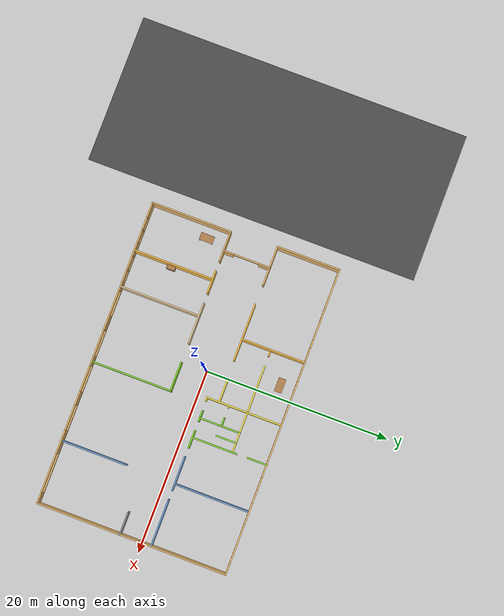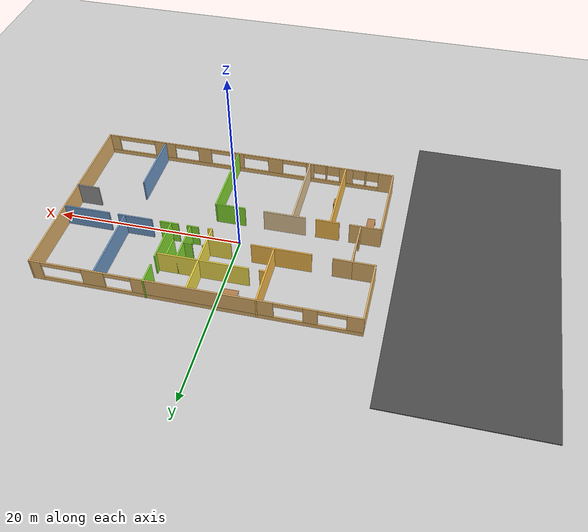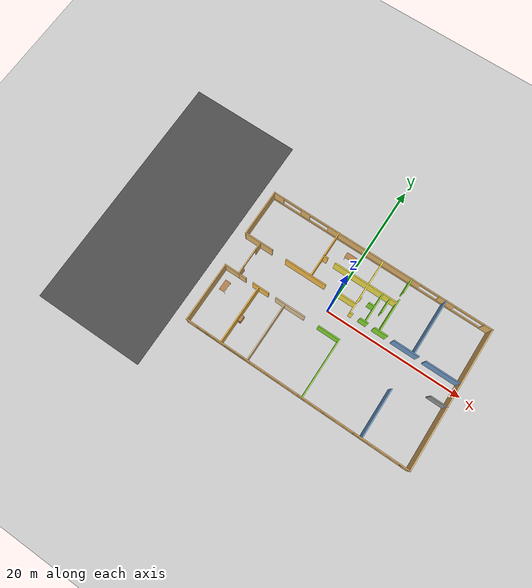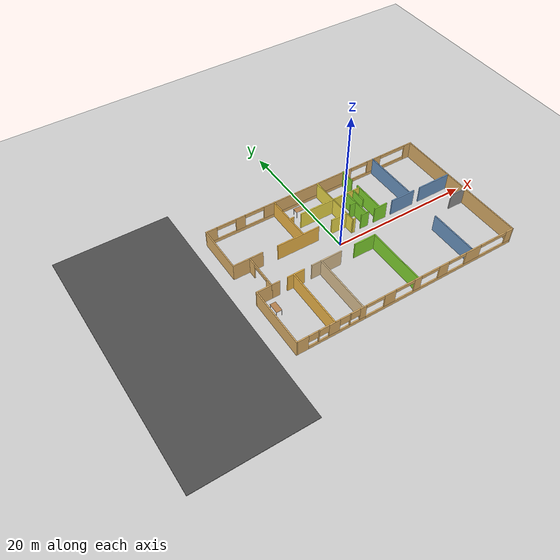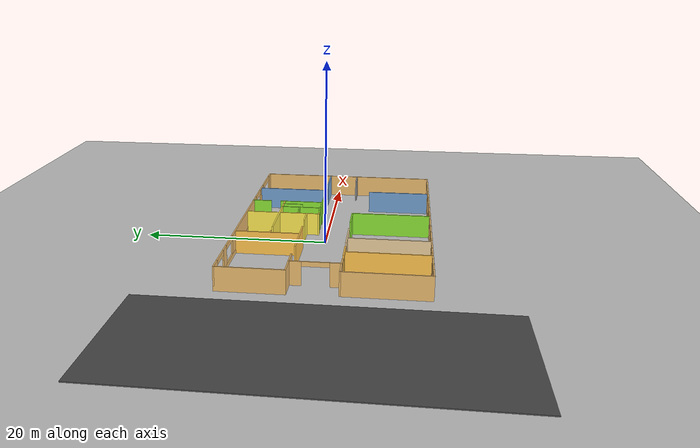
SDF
<sdf version="1.7">
 <world name="default">
  <model name="ground_plane">
   <static>1</static>
   <link name="link">
    <collision name="collision">
     <geometry><plane><normal>0 0 1</normal><size>100 100</size></plane></geometry>
     <surface>
      <contact><collide_bitmask>65535</collide_bitmask></contact>
      <friction><ode><mu>100</mu><mu2>50</mu2></ode></friction>
     </surface>
    </collision>
    <visual name="visual">
     <cast_shadows>0</cast_shadows>
     <geometry><plane><normal>0 0 1</normal><size>100 100</size></plane></geometry>
     <material>
      <script><uri>file://media/materials/scripts/gazebo.material</uri><name>Gazebo/Grey</name></script>
     </material>
    </visual>
   </link>
  </model>
  <model name="myNewWorld">
   <pose>2.09066 -1.06842 0 0 -0 0</pose>
   <link name="Wall_0">
    <collision name="Wall_0_Collision">
     <geometry><box><size>8.75 0.15 2.5</size></box></geometry>
     <pose>0 0 1.25 0 -0 0</pose>
    </collision>
    <visual name="Wall_0_Visual">
     <pose>0 0 1.25 0 -0 0</pose>
     <geometry><box><size>8.75 0.15 2.5</size></box></geometry>
     <material>
      <script><uri>file://media/materials/scripts/gazebo.material</uri><name>Gazebo/Grey</name></script>
      <ambient>0.913725 0.72549 0.431373 1</ambient>
     </material>
     <meta><layer>0</layer></meta>
    </visual>
    <pose>-16.4305 -6.02061 0 0 -0 -1.5708</pose>
   </link>
   <link name="Wall_1">
    <pose>0.119547 -10.3206 0 0 -0 0</pose>
    <visual name="Wall_1_Visual_0">
     <pose>-15.7898 0 1.25 0 -0 0</pose>
     <geometry><box><size>1.67032 0.15 2.5</size></box></geometry>
     <material>
      <script><uri>file://media/materials/scripts/gazebo.material</uri><name>Gazebo/Grey</name></script>
      <ambient>0.913725 0.72549 0.431373 1</ambient>
     </material>
     <meta><layer>0</layer></meta>
    </visual>
    <collision name="Wall_1_Collision_0">
     <geometry><box><size>1.67032 0.15 2.5</size></box></geometry>
     <pose>-15.7898 0 1.25 0 -0 0</pose>
    </collision>
    <visual name="Wall_1_Visual_1">
     <pose>-10.8802 0 0.25 0 -0 0</pose>
     <geometry><box><size>8.149 0.15 0.5</size></box></geometry>
     <material>
      <script><uri>file://media/materials/scripts/gazebo.material</uri><name>Gazebo/Grey</name></script>
      <ambient>0.913725 0.72549 0.431373 1</ambient>
     </material>
     <meta><layer>0</layer></meta>
    </visual>
    <collision name="Wall_1_Collision_1">
     <geometry><box><size>8.149 0.15 0.5</size></box></geometry>
     <pose>-10.8802 0 0.25 0 -0 0</pose>
    </collision>
    <visual name="Wall_1_Visual_2">
     <pose>4.90966 0 0.25 0 -0 0</pose>
     <geometry><box><size>23.4307 0.15 0.5</size></box></geometry>
     <material>
      <script><uri>file://media/materials/scripts/gazebo.material</uri><name>Gazebo/Grey</name></script>
      <ambient>0.913725 0.72549 0.431373 1</ambient>
     </material>
     <meta><layer>0</layer></meta>
    </visual>
    <collision name="Wall_1_Collision_2">
     <geometry><box><size>23.4307 0.15 0.5</size></box></geometry>
     <pose>4.90966 0 0.25 0 -0 0</pose>
    </collision>
    <visual name="Wall_1_Visual_3">
     <pose>-3.24471 0 1.5 0 -0 0</pose>
     <geometry><box><size>1.68247 0.15 2</size></box></geometry>
     <material>
      <script><uri>file://media/materials/scripts/gazebo.material</uri><name>Gazebo/Grey</name></script>
      <ambient>0.913725 0.72549 0.431373 1</ambient>
     </material>
     <meta><layer>0</layer></meta>
    </visual>
    <collision name="Wall_1_Collision_3">
     <geometry><box><size>1.68247 0.15 2</size></box></geometry>
     <pose>-3.24471 0 1.5 0 -0 0</pose>
    </collision>
    <visual name="Wall_1_Visual_4">
     <pose>0.991858 0 1.5 0 -0 0</pose>
     <geometry><box><size>1.08666 0.15 2</size></box></geometry>
     <material>
      <script><uri>file://media/materials/scripts/gazebo.material</uri><name>Gazebo/Grey</name></script>
      <ambient>0.913725 0.72549 0.431373 1</ambient>
     </material>
     <meta><layer>0</layer></meta>
    </visual>
    <collision name="Wall_1_Collision_4">
     <geometry><box><size>1.08666 0.15 2</size></box></geometry>
     <pose>0.991858 0 1.5 0 -0 0</pose>
    </collision>
    <visual name="Wall_1_Visual_5">
     <pose>5.09613 0 1.5 0 -0 0</pose>
     <geometry><box><size>1.54989 0.15 2</size></box></geometry>
     <material>
      <script><uri>file://media/materials/scripts/gazebo.material</uri><name>Gazebo/Grey</name></script>
      <ambient>0.913725 0.72549 0.431373 1</ambient>
     </material>
     <meta><layer>0</layer></meta>
    </visual>
    <collision name="Wall_1_Collision_5">
     <geometry><box><size>1.54989 0.15 2</size></box></geometry>
     <pose>5.09613 0 1.5 0 -0 0</pose>
    </collision>
    <visual name="Wall_1_Visual_6">
     <pose>9.87907 0 1.5 0 -0 0</pose>
     <geometry><box><size>2.50998 0.15 2</size></box></geometry>
     <material>
      <script><uri>file://media/materials/scripts/gazebo.material</uri><name>Gazebo/Grey</name></script>
      <ambient>0.913725 0.72549 0.431373 1</ambient>
     </material>
     <meta><layer>0</layer></meta>
    </visual>
    <collision name="Wall_1_Collision_6">
     <geometry><box><size>2.50998 0.15 2</size></box></geometry>
     <pose>9.87907 0 1.5 0 -0 0</pose>
    </collision>
    <visual name="Wall_1_Visual_7">
     <pose>16.017 0 1.5 0 -0 0</pose>
     <geometry><box><size>1.21594 0.15 2</size></box></geometry>
     <material>
      <script><uri>file://media/materials/scripts/gazebo.material</uri><name>Gazebo/Grey</name></script>
      <ambient>0.913725 0.72549 0.431373 1</ambient>
     </material>
     <meta><layer>0</layer></meta>
    </visual>
    <collision name="Wall_1_Collision_7">
     <geometry><box><size>1.21594 0.15 2</size></box></geometry>
     <pose>16.017 0 1.5 0 -0 0</pose>
    </collision>
    <visual name="Wall_1_Visual_8">
     <pose>-13.5437 0 1.5 0 -0 0</pose>
     <geometry><box><size>0.168237 0.15 2</size></box></geometry>
     <material>
      <script><uri>file://media/materials/scripts/gazebo.material</uri><name>Gazebo/Grey</name></script>
      <ambient>0.913725 0.72549 0.431373 1</ambient>
     </material>
     <meta><layer>0</layer></meta>
    </visual>
    <collision name="Wall_1_Collision_8">
     <geometry><box><size>0.168237 0.15 2</size></box></geometry>
     <pose>-13.5437 0 1.5 0 -0 0</pose>
    </collision>
    <visual name="Wall_1_Visual_9">
     <pose>-11.3487 0 1.5 0 -0 0</pose>
     <geometry><box><size>1.53961 0.15 2</size></box></geometry>
     <material>
      <script><uri>file://media/materials/scripts/gazebo.material</uri><name>Gazebo/Grey</name></script>
      <ambient>0.913725 0.72549 0.431373 1</ambient>
     </material>
     <meta><layer>0</layer></meta>
    </visual>
    <collision name="Wall_1_Collision_9">
     <geometry><box><size>1.53961 0.15 2</size></box></geometry>
     <pose>-11.3487 0 1.5 0 -0 0</pose>
    </collision>
    <visual name="Wall_1_Visual_10">
     <pose>-9.10323 0 1.5 0 -0 0</pose>
     <geometry><box><size>0.159865 0.15 2</size></box></geometry>
     <material>
      <script><uri>file://media/materials/scripts/gazebo.material</uri><name>Gazebo/Grey</name></script>
      <ambient>0.913725 0.72549 0.431373 1</ambient>
     </material>
     <meta><layer>0</layer></meta>
    </visual>
    <collision name="Wall_1_Collision_10">
     <geometry><box><size>0.159865 0.15 2</size></box></geometry>
     <pose>-9.10323 0 1.5 0 -0 0</pose>
    </collision>
    <visual name="Wall_1_Visual_11">
     <pose>-7.2497 0 1.5 0 -0 0</pose>
     <geometry><box><size>0.888039 0.15 2</size></box></geometry>
     <material>
      <script><uri>file://media/materials/scripts/gazebo.material</uri><name>Gazebo/Grey</name></script>
      <ambient>0.913725 0.72549 0.431373 1</ambient>
     </material>
     <meta><layer>0</layer></meta>
    </visual>
    <collision name="Wall_1_Collision_11">
     <geometry><box><size>0.888039 0.15 2</size></box></geometry>
     <pose>-7.2497 0 1.5 0 -0 0</pose>
    </collision>
    <visual name="Wall_1_Visual_12">
     <pose>-7.2497 0 1.5 0 -0 0</pose>
     <geometry><box><size>0.888039 0.15 2</size></box></geometry>
     <material>
      <script><uri>file://media/materials/scripts/gazebo.material</uri><name>Gazebo/Grey</name></script>
      <ambient>0.913725 0.72549 0.431373 1</ambient>
     </material>
     <meta><layer>0</layer></meta>
    </visual>
    <collision name="Wall_1_Collision_12">
     <geometry><box><size>0.888039 0.15 2</size></box></geometry>
     <pose>-7.2497 0 1.5 0 -0 0</pose>
    </collision>
    <visual name="Wall_1_Visual_13">
     <pose>-14.2912 0 1.9 0 -0 0</pose>
     <geometry><box><size>1.32689 0.15 1.2</size></box></geometry>
     <material>
      <script><uri>file://media/materials/scripts/gazebo.material</uri><name>Gazebo/Grey</name></script>
      <ambient>0.913725 0.72549 0.431373 1</ambient>
     </material>
     <meta><layer>0</layer></meta>
    </visual>
    <collision name="Wall_1_Collision_13">
     <geometry><box><size>1.32689 0.15 1.2</size></box></geometry>
     <pose>-14.2912 0 1.9 0 -0 0</pose>
    </collision>
    <visual name="Wall_1_Visual_14">
     <pose>-12.789 0 1.9 0 -0 0</pose>
     <geometry><box><size>1.341 0.15 1.2</size></box></geometry>
     <material>
      <script><uri>file://media/materials/scripts/gazebo.material</uri><name>Gazebo/Grey</name></script>
      <ambient>0.913725 0.72549 0.431373 1</ambient>
     </material>
     <meta><layer>0</layer></meta>
    </visual>
    <collision name="Wall_1_Collision_14">
     <geometry><box><size>1.341 0.15 1.2</size></box></geometry>
     <pose>-12.789 0 1.9 0 -0 0</pose>
    </collision>
    <visual name="Wall_1_Visual_15">
     <pose>-9.88105 0 1.9 0 -0 0</pose>
     <geometry><box><size>1.39578 0.15 1.2</size></box></geometry>
     <material>
      <script><uri>file://media/materials/scripts/gazebo.material</uri><name>Gazebo/Grey</name></script>
      <ambient>0.913725 0.72549 0.431373 1</ambient>
     </material>
     <meta><layer>0</layer></meta>
    </visual>
    <collision name="Wall_1_Collision_15">
     <geometry><box><size>1.39578 0.15 1.2</size></box></geometry>
     <pose>-9.88105 0 1.9 0 -0 0</pose>
    </collision>
    <visual name="Wall_1_Visual_16">
     <pose>-8.3585 0 1.9 0 -0 0</pose>
     <geometry><box><size>1.32958 0.15 1.2</size></box></geometry>
     <material>
      <script><uri>file://media/materials/scripts/gazebo.material</uri><name>Gazebo/Grey</name></script>
      <ambient>0.913725 0.72549 0.431373 1</ambient>
     </material>
     <meta><layer>0</layer></meta>
    </visual>
    <collision name="Wall_1_Collision_16">
     <geometry><box><size>1.32958 0.15 1.2</size></box></geometry>
     <pose>-8.3585 0 1.9 0 -0 0</pose>
    </collision>
    <visual name="Wall_1_Visual_17">
     <pose>-0.977472 0 2.25 0 -0 0</pose>
     <geometry><box><size>2.852 0.15 0.5</size></box></geometry>
     <material>
      <script><uri>file://media/materials/scripts/gazebo.material</uri><name>Gazebo/Grey</name></script>
      <ambient>0.913725 0.72549 0.431373 1</ambient>
     </material>
     <meta><layer>0</layer></meta>
    </visual>
    <collision name="Wall_1_Collision_17">
     <geometry><box><size>2.852 0.15 0.5</size></box></geometry>
     <pose>-0.977472 0 2.25 0 -0 0</pose>
    </collision>
    <visual name="Wall_1_Visual_18">
     <pose>2.92819 0 2.25 0 -0 0</pose>
     <geometry><box><size>2.786 0.15 0.5</size></box></geometry>
     <material>
      <script><uri>file://media/materials/scripts/gazebo.material</uri><name>Gazebo/Grey</name></script>
      <ambient>0.913725 0.72549 0.431373 1</ambient>
     </material>
     <meta><layer>0</layer></meta>
    </visual>
    <collision name="Wall_1_Collision_18">
     <geometry><box><size>2.786 0.15 0.5</size></box></geometry>
     <pose>2.92819 0 2.25 0 -0 0</pose>
    </collision>
    <visual name="Wall_1_Visual_19">
     <pose>7.24758 0 2.25 0 -0 0</pose>
     <geometry><box><size>2.753 0.15 0.5</size></box></geometry>
     <material>
      <script><uri>file://media/materials/scripts/gazebo.material</uri><name>Gazebo/Grey</name></script>
      <ambient>0.913725 0.72549 0.431373 1</ambient>
     </material>
     <meta><layer>0</layer></meta>
    </visual>
    <collision name="Wall_1_Collision_19">
     <geometry><box><size>2.753 0.15 0.5</size></box></geometry>
     <pose>7.24758 0 2.25 0 -0 0</pose>
    </collision>
    <visual name="Wall_1_Visual_20">
     <pose>13.2716 0 2.25 0 -0 0</pose>
     <geometry><box><size>4.275 0.15 0.5</size></box></geometry>
     <material>
      <script><uri>file://media/materials/scripts/gazebo.material</uri><name>Gazebo/Grey</name></script>
      <ambient>0.913725 0.72549 0.431373 1</ambient>
     </material>
     <meta><layer>0</layer></meta>
    </visual>
    <collision name="Wall_1_Collision_20">
     <geometry><box><size>4.275 0.15 0.5</size></box></geometry>
     <pose>13.2716 0 2.25 0 -0 0</pose>
    </collision>
    <visual name="Wall_1_Visual_21">
     <pose>-5.44581 0 2.25 0 -0 0</pose>
     <geometry><box><size>2.71973 0.15 0.5</size></box></geometry>
     <material>
      <script><uri>file://media/materials/scripts/gazebo.material</uri><name>Gazebo/Grey</name></script>
      <ambient>0.913725 0.72549 0.431373 1</ambient>
     </material>
     <meta><layer>0</layer></meta>
    </visual>
    <collision name="Wall_1_Collision_21">
     <geometry><box><size>2.71973 0.15 0.5</size></box></geometry>
     <pose>-5.44581 0 2.25 0 -0 0</pose>
    </collision>
    <visual name="Wall_1_Visual_22">
     <pose>-5.44581 0 2.25 0 -0 0</pose>
     <geometry><box><size>2.71973 0.15 0.5</size></box></geometry>
     <material>
      <script><uri>file://media/materials/scripts/gazebo.material</uri><name>Gazebo/Grey</name></script>
      <ambient>0.913725 0.72549 0.431373 1</ambient>
     </material>
     <meta><layer>0</layer></meta>
    </visual>
    <collision name="Wall_1_Collision_22">
     <geometry><box><size>2.71973 0.15 0.5</size></box></geometry>
     <pose>-5.44581 0 2.25 0 -0 0</pose>
    </collision>
   </link>
   <link name="Wall_11">
    <collision name="Wall_11_Collision">
     <geometry><box><size>2.5 0.15 2.5</size></box></geometry>
     <pose>0 0 1.25 0 -0 0</pose>
    </collision>
    <visual name="Wall_11_Visual">
     <pose>0 0 1.25 0 -0 0</pose>
     <geometry><box><size>2.5 0.15 2.5</size></box></geometry>
     <material>
      <script><uri>file://media/materials/scripts/gazebo.material</uri><name>Gazebo/Grey</name></script>
      <ambient>1 0.764706 0.305882 1</ambient>
     </material>
     <meta><layer>0</layer></meta>
    </visual>
    <pose>-10.8599 -1.67429 0 0 -0 0</pose>
   </link>
   <link name="Wall_13">
    <collision name="Wall_13_Collision">
     <geometry><box><size>4.5 0.15 2.5</size></box></geometry>
     <pose>0 0 1.25 0 -0 0</pose>
    </collision>
    <visual name="Wall_13_Visual">
     <pose>0 0 1.25 0 -0 0</pose>
     <geometry><box><size>4.5 0.15 2.5</size></box></geometry>
     <material>
      <script><uri>file://media/materials/scripts/gazebo.material</uri><name>Gazebo/Grey</name></script>
      <ambient>0.921569 0.807843 0.615686 1</ambient>
     </material>
     <meta><layer>0</layer></meta>
    </visual>
    <pose>-6.29523 -1.65724 0 0 -0 0</pose>
   </link>
   <link name="Wall_15">
    <collision name="Wall_15_Collision">
     <geometry><box><size>3.25 0.15 2.5</size></box></geometry>
     <pose>0 0 1.25 0 -0 0</pose>
    </collision>
    <visual name="Wall_15_Visual">
     <pose>0 0 1.25 0 -0 0</pose>
     <geometry><box><size>3.25 0.15 2.5</size></box></geometry>
     <material>
      <script><uri>file://media/materials/scripts/gazebo.material</uri><name>Gazebo/Grey</name></script>
      <ambient>0.541176 0.886275 0.203922 1</ambient>
     </material>
     <meta><layer>0</layer></meta>
    </visual>
    <pose>-0.387876 -1.65724 0 0 -0 0</pose>
   </link>
   <link name="Wall_16">
    <collision name="Wall_16_Collision">
     <geometry><box><size>8.75 0.15 2.5</size></box></geometry>
     <pose>0 0 1.25 0 -0 0</pose>
    </collision>
    <visual name="Wall_16_Visual">
     <pose>0 0 1.25 0 -0 0</pose>
     <geometry><box><size>8.75 0.15 2.5</size></box></geometry>
     <material>
      <script><uri>file://media/materials/scripts/gazebo.material</uri><name>Gazebo/Grey</name></script>
      <ambient>0.541176 0.886275 0.203922 1</ambient>
     </material>
     <meta><layer>0</layer></meta>
    </visual>
    <pose>1.16212 -5.95724 0 0 -0 -1.5708</pose>
   </link>
   <link name="Wall_18">
    <collision name="Wall_18_Collision">
     <geometry><box><size>8.75 0.15 2.5</size></box></geometry>
     <pose>0 0 1.25 0 -0 0</pose>
    </collision>
    <visual name="Wall_18_Visual">
     <pose>0 0 1.25 0 -0 0</pose>
     <geometry><box><size>8.75 0.15 2.5</size></box></geometry>
     <material>
      <script><uri>file://media/materials/scripts/gazebo.material</uri><name>Gazebo/Grey</name></script>
      <ambient>0.921569 0.807843 0.615686 1</ambient>
     </material>
     <meta><layer>0</layer></meta>
    </visual>
    <pose>-7.12178 -6.02056 0 0 -0 1.5708</pose>
   </link>
   <link name="Wall_2">
    <collision name="Wall_2_Collision">
     <geometry><box><size>20.75 0.15 2.5</size></box></geometry>
     <pose>0 0 1.25 0 -0 0</pose>
    </collision>
    <visual name="Wall_2_Visual">
     <pose>0 0 1.25 0 -0 0</pose>
     <geometry><box><size>20.75 0.15 2.5</size></box></geometry>
     <material>
      <script><uri>file://media/materials/scripts/gazebo.material</uri><name>Gazebo/Grey</name></script>
      <ambient>0.913725 0.72549 0.431373 1</ambient>
     </material>
     <meta><layer>0</layer></meta>
    </visual>
    <pose>16.6695 -0.020609 0 0 -0 1.5708</pose>
   </link>
   <link name="Wall_20">
    <collision name="Wall_20_Collision">
     <geometry><box><size>8.75 0.15 2.5</size></box></geometry>
     <pose>0 0 1.25 0 -0 0</pose>
    </collision>
    <visual name="Wall_20_Visual">
     <pose>0 0 1.25 0 -0 0</pose>
     <geometry><box><size>8.75 0.15 2.5</size></box></geometry>
     <material>
      <script><uri>file://media/materials/scripts/gazebo.material</uri><name>Gazebo/Grey</name></script>
      <ambient>1 0.764706 0.305882 1</ambient>
     </material>
     <meta><layer>0</layer></meta>
    </visual>
    <pose>-11.1558 -6.00573 0 0 -0 1.5708</pose>
   </link>
   <link name="Wall_22">
    <collision name="Wall_22_Collision">
     <geometry><box><size>2.5 0.15 2.5</size></box></geometry>
     <pose>0 0 1.25 0 -0 0</pose>
    </collision>
    <visual name="Wall_22_Visual">
     <pose>0 0 1.25 0 -0 0</pose>
     <geometry><box><size>2.5 0.15 2.5</size></box></geometry>
     <material>
      <script><uri>file://media/materials/scripts/gazebo.material</uri><name>Gazebo/Grey</name></script>
      <ambient>1 1 1 1</ambient>
     </material>
     <meta><layer>0</layer></meta>
    </visual>
    <pose>15.5055 -1.28166 0 0 -0 3.14159</pose>
   </link>
   <link name="Wall_24">
    <collision name="Wall_24_Collision">
     <geometry><box><size>5 0.15 2.5</size></box></geometry>
     <pose>0 0 1.25 0 -0 0</pose>
    </collision>
    <visual name="Wall_24_Visual">
     <pose>0 0 1.25 0 -0 0</pose>
     <geometry><box><size>5 0.15 2.5</size></box></geometry>
     <material>
      <script><uri>file://media/materials/scripts/gazebo.material</uri><name>Gazebo/Grey</name></script>
      <ambient>0.447059 0.623529 0.811765 1</ambient>
     </material>
     <meta><layer>0</layer></meta>
    </visual>
    <pose>14.1205 2.12433 0 0 -0 0</pose>
   </link>
   <link name="Wall_26">
    <collision name="Wall_26_Collision">
     <geometry><box><size>3.75 0.15 2.5</size></box></geometry>
     <pose>0 0 1.25 0 -0 0</pose>
    </collision>
    <visual name="Wall_26_Visual">
     <pose>0 0 1.25 0 -0 0</pose>
     <geometry><box><size>3.75 0.15 2.5</size></box></geometry>
     <material>
      <script><uri>file://media/materials/scripts/gazebo.material</uri><name>Gazebo/Grey</name></script>
      <ambient>0.447059 0.623529 0.811765 1</ambient>
     </material>
     <meta><layer>0</layer></meta>
    </visual>
    <pose>8.79119 2.12848 0 0 -0 0</pose>
   </link>
   <link name="Wall_28">
    <collision name="Wall_28_Collision">
     <geometry><box><size>2 0.15 2.5</size></box></geometry>
     <pose>0 0 1.25 0 -0 0</pose>
    </collision>
    <visual name="Wall_28_Visual">
     <pose>0 0 1.25 0 -0 0</pose>
     <geometry><box><size>2 0.15 2.5</size></box></geometry>
     <material>
      <script><uri>file://media/materials/scripts/gazebo.material</uri><name>Gazebo/Grey</name></script>
      <ambient>0.541176 0.886275 0.203922 1</ambient>
     </material>
     <meta><layer>0</layer></meta>
    </visual>
    <pose>5.03377 2.14554 0 0 -0 0</pose>
   </link>
   <link name="Wall_3">
    <pose>-0.005453 10.2794 0 0 -0 3.14159</pose>
    <visual name="Wall_3_Visual_0">
     <pose>-16.1255 0 1.25 0 -0 0</pose>
     <geometry><box><size>1.24899 0.15 2.5</size></box></geometry>
     <material>
      <script><uri>file://media/materials/scripts/gazebo.material</uri><name>Gazebo/Grey</name></script>
      <ambient>0.913725 0.72549 0.431373 1</ambient>
     </material>
     <meta><layer>0</layer></meta>
    </visual>
    <collision name="Wall_3_Collision_0">
     <geometry><box><size>1.24899 0.15 2.5</size></box></geometry>
     <pose>-16.1255 0 1.25 0 -0 0</pose>
    </collision>
    <visual name="Wall_3_Visual_1">
     <pose>0.624493 0 0.25 0 -0 0</pose>
     <geometry><box><size>32.251 0.15 0.5</size></box></geometry>
     <material>
      <script><uri>file://media/materials/scripts/gazebo.material</uri><name>Gazebo/Grey</name></script>
      <ambient>0.913725 0.72549 0.431373 1</ambient>
     </material>
     <meta><layer>0</layer></meta>
    </visual>
    <collision name="Wall_3_Collision_1">
     <geometry><box><size>32.251 0.15 0.5</size></box></geometry>
     <pose>0.624493 0 0.25 0 -0 0</pose>
    </collision>
    <visual name="Wall_3_Visual_2">
     <pose>-10.0868 0 1.5 0 -0 0</pose>
     <geometry><box><size>2.34444 0.15 2</size></box></geometry>
     <material>
      <script><uri>file://media/materials/scripts/gazebo.material</uri><name>Gazebo/Grey</name></script>
      <ambient>0.913725 0.72549 0.431373 1</ambient>
     </material>
     <meta><layer>0</layer></meta>
    </visual>
    <collision name="Wall_3_Collision_2">
     <geometry><box><size>2.34444 0.15 2</size></box></geometry>
     <pose>-10.0868 0 1.5 0 -0 0</pose>
    </collision>
    <visual name="Wall_3_Visual_3">
     <pose>0.951811 0 1.5 0 -0 0</pose>
     <geometry><box><size>14.2268 0.15 2</size></box></geometry>
     <material>
      <script><uri>file://media/materials/scripts/gazebo.material</uri><name>Gazebo/Grey</name></script>
      <ambient>0.913725 0.72549 0.431373 1</ambient>
     </material>
     <meta><layer>0</layer></meta>
    </visual>
    <collision name="Wall_3_Collision_3">
     <geometry><box><size>14.2268 0.15 2</size></box></geometry>
     <pose>0.951811 0 1.5 0 -0 0</pose>
    </collision>
    <visual name="Wall_3_Visual_4">
     <pose>11.6261 0 1.5 0 -0 0</pose>
     <geometry><box><size>1.41759 0.15 2</size></box></geometry>
     <material>
      <script><uri>file://media/materials/scripts/gazebo.material</uri><name>Gazebo/Grey</name></script>
      <ambient>0.913725 0.72549 0.431373 1</ambient>
     </material>
     <meta><layer>0</layer></meta>
    </visual>
    <collision name="Wall_3_Collision_4">
     <geometry><box><size>1.41759 0.15 2</size></box></geometry>
     <pose>11.6261 0 1.5 0 -0 0</pose>
    </collision>
    <visual name="Wall_3_Visual_5">
     <pose>15.9355 0 1.5 0 -0 0</pose>
     <geometry><box><size>1.62909 0.15 2</size></box></geometry>
     <material>
      <script><uri>file://media/materials/scripts/gazebo.material</uri><name>Gazebo/Grey</name></script>
      <ambient>0.913725 0.72549 0.431373 1</ambient>
     </material>
     <meta><layer>0</layer></meta>
    </visual>
    <collision name="Wall_3_Collision_5">
     <geometry><box><size>1.62909 0.15 2</size></box></geometry>
     <pose>15.9355 0 1.5 0 -0 0</pose>
    </collision>
    <visual name="Wall_3_Visual_6">
     <pose>-13.38 0 2.25 0 -0 0</pose>
     <geometry><box><size>4.242 0.15 0.5</size></box></geometry>
     <material>
      <script><uri>file://media/materials/scripts/gazebo.material</uri><name>Gazebo/Grey</name></script>
      <ambient>0.913725 0.72549 0.431373 1</ambient>
     </material>
     <meta><layer>0</layer></meta>
    </visual>
    <collision name="Wall_3_Collision_6">
     <geometry><box><size>4.242 0.15 0.5</size></box></geometry>
     <pose>-13.38 0 2.25 0 -0 0</pose>
    </collision>
    <visual name="Wall_3_Visual_7">
     <pose>-7.53808 0 2.25 0 -0 0</pose>
     <geometry><box><size>2.753 0.15 0.5</size></box></geometry>
     <material>
      <script><uri>file://media/materials/scripts/gazebo.material</uri><name>Gazebo/Grey</name></script>
      <ambient>0.913725 0.72549 0.431373 1</ambient>
     </material>
     <meta><layer>0</layer></meta>
    </visual>
    <collision name="Wall_3_Collision_7">
     <geometry><box><size>2.753 0.15 0.5</size></box></geometry>
     <pose>-7.53808 0 2.25 0 -0 0</pose>
    </collision>
    <visual name="Wall_3_Visual_8">
     <pose>9.49126 0 2.25 0 -0 0</pose>
     <geometry><box><size>2.85213 0.15 0.5</size></box></geometry>
     <material>
      <script><uri>file://media/materials/scripts/gazebo.material</uri><name>Gazebo/Grey</name></script>
      <ambient>0.913725 0.72549 0.431373 1</ambient>
     </material>
     <meta><layer>0</layer></meta>
    </visual>
    <collision name="Wall_3_Collision_8">
     <geometry><box><size>2.85213 0.15 0.5</size></box></geometry>
     <pose>9.49126 0 2.25 0 -0 0</pose>
    </collision>
    <visual name="Wall_3_Visual_9">
     <pose>13.7279 0 2.25 0 -0 0</pose>
     <geometry><box><size>2.786 0.15 0.5</size></box></geometry>
     <material>
      <script><uri>file://media/materials/scripts/gazebo.material</uri><name>Gazebo/Grey</name></script>
      <ambient>0.913725 0.72549 0.431373 1</ambient>
     </material>
     <meta><layer>0</layer></meta>
    </visual>
    <collision name="Wall_3_Collision_9">
     <geometry><box><size>2.786 0.15 0.5</size></box></geometry>
     <pose>13.7279 0 2.25 0 -0 0</pose>
    </collision>
   </link>
   <link name="Wall_30">
    <collision name="Wall_30_Collision">
     <geometry><box><size>1.25 0.15 2.5</size></box></geometry>
     <pose>0 0 1.25 0 -0 0</pose>
    </collision>
    <visual name="Wall_30_Visual">
     <pose>0 0 1.25 0 -0 0</pose>
     <geometry><box><size>1.25 0.15 2.5</size></box></geometry>
     <material>
      <script><uri>file://media/materials/scripts/gazebo.material</uri><name>Gazebo/Grey</name></script>
      <ambient>0.541176 0.886275 0.203922 1</ambient>
     </material>
     <meta><layer>0</layer></meta>
    </visual>
    <pose>2.49269 2.1626 0 0 -0 0</pose>
   </link>
   <link name="Wall_32">
    <collision name="Wall_32_Collision">
     <geometry><box><size>0.5 0.15 2.5</size></box></geometry>
     <pose>0 0 1.25 0 -0 0</pose>
    </collision>
    <visual name="Wall_32_Visual">
     <pose>0 0 1.25 0 -0 0</pose>
     <geometry><box><size>0.5 0.15 2.5</size></box></geometry>
     <material>
      <script><uri>file://media/materials/scripts/gazebo.material</uri><name>Gazebo/Grey</name></script>
      <ambient>0.988235 0.913725 0.309804 1</ambient>
     </material>
     <meta><layer>0</layer></meta>
    </visual>
    <pose>0.642012 2.09437 0 0 -0 3.14159</pose>
   </link>
   <link name="Wall_33">
    <collision name="Wall_33_Collision">
     <geometry><box><size>1.5 0.15 2.5</size></box></geometry>
     <pose>0 0 1.25 0 -0 0</pose>
    </collision>
    <visual name="Wall_33_Visual">
     <pose>0 0 1.25 0 -0 0</pose>
     <geometry><box><size>1.5 0.15 2.5</size></box></geometry>
     <material>
      <script><uri>file://media/materials/scripts/gazebo.material</uri><name>Gazebo/Grey</name></script>
      <ambient>0.988235 0.913725 0.309804 1</ambient>
     </material>
     <meta><layer>0</layer></meta>
    </visual>
    <pose>0.467012 2.76937 0 0 -0 1.5708</pose>
   </link>
   <link name="Wall_34">
    <collision name="Wall_34_Collision">
     <geometry><box><size>2.5 0.15 2.5</size></box></geometry>
     <pose>0 0 1.25 0 -0 0</pose>
    </collision>
    <visual name="Wall_34_Visual">
     <pose>0 0 1.25 0 -0 0</pose>
     <geometry><box><size>2.5 0.15 2.5</size></box></geometry>
     <material>
      <script><uri>file://media/materials/scripts/gazebo.material</uri><name>Gazebo/Grey</name></script>
      <ambient>0.988235 0.913725 0.309804 1</ambient>
     </material>
     <meta><layer>0</layer></meta>
    </visual>
    <pose>-0.707988 3.44437 0 0 -0 3.14159</pose>
   </link>
   <link name="Wall_36">
    <collision name="Wall_36_Collision">
     <geometry><box><size>6.25 0.15 2.5</size></box></geometry>
     <pose>0 0 1.25 0 -0 0</pose>
    </collision>
    <visual name="Wall_36_Visual">
     <pose>0 0 1.25 0 -0 0</pose>
     <geometry><box><size>6.25 0.15 2.5</size></box></geometry>
     <material>
      <script><uri>file://media/materials/scripts/gazebo.material</uri><name>Gazebo/Grey</name></script>
      <ambient>1 0.764706 0.305882 1</ambient>
     </material>
     <meta><layer>0</layer></meta>
    </visual>
    <pose>-7.1621 3.3565 0 0 -0 3.14159</pose>
   </link>
   <link name="Wall_38">
    <collision name="Wall_38_Collision">
     <geometry><box><size>2 0.15 2.5</size></box></geometry>
     <pose>0 0 1.25 0 -0 0</pose>
    </collision>
    <visual name="Wall_38_Visual">
     <pose>0 0 1.25 0 -0 0</pose>
     <geometry><box><size>2 0.15 2.5</size></box></geometry>
     <material>
      <script><uri>file://media/materials/scripts/gazebo.material</uri><name>Gazebo/Grey</name></script>
      <ambient>0.913725 0.72549 0.431373 1</ambient>
     </material>
     <meta><layer>0</layer></meta>
    </visual>
    <pose>-13.4055 3.42939 0 0 -0 3.14159</pose>
   </link>
   <link name="Wall_4">
    <collision name="Wall_4_Collision">
     <geometry><box><size>7 0.15 2.5</size></box></geometry>
     <pose>0 0 1.25 0 -0 0</pose>
    </collision>
    <visual name="Wall_4_Visual">
     <pose>0 0 1.25 0 -0 0</pose>
     <geometry><box><size>7 0.15 2.5</size></box></geometry>
     <material>
      <script><uri>file://media/materials/scripts/gazebo.material</uri><name>Gazebo/Grey</name></script>
      <ambient>0.913725 0.72549 0.431373 1</ambient>
     </material>
     <meta><layer>0</layer></meta>
    </visual>
    <pose>-16.6805 6.85439 0 0 -0 -1.5708</pose>
   </link>
   <link name="Wall_40">
    <collision name="Wall_40_Collision">
     <geometry><box><size>8.25 0.15 2.5</size></box></geometry>
     <pose>0 0 1.25 0 -0 0</pose>
    </collision>
    <visual name="Wall_40_Visual">
     <pose>0 0 1.25 0 -0 0</pose>
     <geometry><box><size>8.25 0.15 2.5</size></box></geometry>
     <material>
      <script><uri>file://media/materials/scripts/gazebo.material</uri><name>Gazebo/Grey</name></script>
      <ambient>0.447059 0.623529 0.811765 1</ambient>
     </material>
     <meta><layer>0</layer></meta>
    </visual>
    <pose>9.92596 6.20216 0 0 -0 1.5708</pose>
   </link>
   <link name="Wall_42">
    <collision name="Wall_42_Collision">
     <geometry><box><size>2.25 0.15 2.5</size></box></geometry>
     <pose>0 0 1.25 0 -0 0</pose>
    </collision>
    <visual name="Wall_42_Visual">
     <pose>0 0 1.25 0 -0 0</pose>
     <geometry><box><size>2.25 0.15 2.5</size></box></geometry>
     <material>
      <script><uri>file://media/materials/scripts/gazebo.material</uri><name>Gazebo/Grey</name></script>
      <ambient>0.541176 0.886275 0.203922 1</ambient>
     </material>
     <meta><layer>0</layer></meta>
    </visual>
    <pose>4.80188 9.27061 0 0 -0 -1.5708</pose>
   </link>
   <link name="Wall_44">
    <collision name="Wall_44_Collision">
     <geometry><box><size>4.85 0.15 2.5</size></box></geometry>
     <pose>0 0 1.25 0 -0 0</pose>
    </collision>
    <visual name="Wall_44_Visual">
     <pose>0 0 1.25 0 -0 0</pose>
     <geometry><box><size>4.85 0.15 2.5</size></box></geometry>
     <material>
      <script><uri>file://media/materials/scripts/gazebo.material</uri><name>Gazebo/Grey</name></script>
      <ambient>0.541176 0.886275 0.203922 1</ambient>
     </material>
     <meta><layer>0</layer></meta>
    </visual>
    <pose>4.83533 4.62528 0 0 -0 -1.5708</pose>
   </link>
   <link name="Wall_46">
    <collision name="Wall_46_Collision">
     <geometry><box><size>9.5 0.15 2.5</size></box></geometry>
     <pose>0 0 1.25 0 -0 0</pose>
    </collision>
    <visual name="Wall_46_Visual">
     <pose>0 0 1.25 0 -0 0</pose>
     <geometry><box><size>9.5 0.15 2.5</size></box></geometry>
     <material>
      <script><uri>file://media/materials/scripts/gazebo.material</uri><name>Gazebo/Grey</name></script>
      <ambient>0.988235 0.913725 0.309804 1</ambient>
     </material>
     <meta><layer>0</layer></meta>
    </visual>
    <pose>0.076498 6.54038 0 0 -0 0</pose>
   </link>
   <link name="Wall_48">
    <collision name="Wall_48_Collision">
     <geometry><box><size>4.5 0.15 2.5</size></box></geometry>
     <pose>0 0 1.25 0 -0 0</pose>
    </collision>
    <visual name="Wall_48_Visual">
     <pose>0 0 1.25 0 -0 0</pose>
     <geometry><box><size>4.5 0.15 2.5</size></box></geometry>
     <material>
      <script><uri>file://media/materials/scripts/gazebo.material</uri><name>Gazebo/Grey</name></script>
      <ambient>0.541176 0.886275 0.203922 1</ambient>
     </material>
     <meta><layer>0</layer></meta>
    </visual>
    <pose>2.69432 4.36538 0 0 -0 -1.5708</pose>
   </link>
   <link name="Wall_5">
    <collision name="Wall_5_Collision">
     <geometry><box><size>2.5 0.15 2.5</size></box></geometry>
     <pose>0 0 1.25 0 -0 0</pose>
    </collision>
    <visual name="Wall_5_Visual">
     <pose>0 0 1.25 0 -0 0</pose>
     <geometry><box><size>2.5 0.15 2.5</size></box></geometry>
     <material>
      <script><uri>file://media/materials/scripts/gazebo.material</uri><name>Gazebo/Grey</name></script>
      <ambient>0.913725 0.72549 0.431373 1</ambient>
     </material>
     <meta><layer>0</layer></meta>
    </visual>
    <pose>-15.5055 3.42939 0 0 -0 0</pose>
   </link>
   <link name="Wall_51">
    <collision name="Wall_51_Collision">
     <geometry><box><size>3.25 0.15 2.5</size></box></geometry>
     <pose>0 0 1.25 0 -0 0</pose>
    </collision>
    <visual name="Wall_51_Visual">
     <pose>0 0 1.25 0 -0 0</pose>
     <geometry><box><size>3.25 0.15 2.5</size></box></geometry>
     <material>
      <script><uri>file://media/materials/scripts/gazebo.material</uri><name>Gazebo/Grey</name></script>
      <ambient>0.988235 0.913725 0.309804 1</ambient>
     </material>
     <meta><layer>0</layer></meta>
    </visual>
    <pose>0.467012 4.99437 0 0 -0 1.5708</pose>
   </link>
   <link name="Wall_53">
    <collision name="Wall_53_Collision">
     <geometry><box><size>0.25 0.15 2.5</size></box></geometry>
     <pose>0 0 1.25 0 -0 0</pose>
    </collision>
    <visual name="Wall_53_Visual">
     <pose>0 0 1.25 0 -0 0</pose>
     <geometry><box><size>0.25 0.15 2.5</size></box></geometry>
     <material>
      <script><uri>file://media/materials/scripts/gazebo.material</uri><name>Gazebo/Grey</name></script>
      <ambient>0.988235 0.913725 0.309804 1</ambient>
     </material>
     <meta><layer>0</layer></meta>
    </visual>
    <pose>0.58832 4.51646 0 0 -0 3.14159</pose>
   </link>
   <link name="Wall_55">
    <collision name="Wall_55_Collision">
     <geometry><box><size>1 0.15 2.5</size></box></geometry>
     <pose>0 0 1.25 0 -0 0</pose>
    </collision>
    <visual name="Wall_55_Visual">
     <pose>0 0 1.25 0 -0 0</pose>
     <geometry><box><size>1 0.15 2.5</size></box></geometry>
     <material>
      <script><uri>file://media/materials/scripts/gazebo.material</uri><name>Gazebo/Grey</name></script>
      <ambient>0.541176 0.886275 0.203922 1</ambient>
     </material>
     <meta><layer>0</layer></meta>
    </visual>
    <pose>2.27316 4.51858 0 0 -0 0</pose>
   </link>
   <link name="Wall_57">
    <collision name="Wall_57_Collision">
     <geometry><box><size>2.25 0.15 2.5</size></box></geometry>
     <pose>0 0 1.25 0 -0 0</pose>
    </collision>
    <visual name="Wall_57_Visual">
     <pose>0 0 1.25 0 -0 0</pose>
     <geometry><box><size>2.25 0.15 2.5</size></box></geometry>
     <material>
      <script><uri>file://media/materials/scripts/gazebo.material</uri><name>Gazebo/Grey</name></script>
      <ambient>0.541176 0.886275 0.203922 1</ambient>
     </material>
     <meta><layer>0</layer></meta>
    </visual>
    <pose>3.7964 5.44298 0 0 -0 -1.5708</pose>
   </link>
   <link name="Wall_59">
    <collision name="Wall_59_Collision">
     <geometry><box><size>7 0.15 2.5</size></box></geometry>
     <pose>0 0 1.25 0 -0 0</pose>
    </collision>
    <visual name="Wall_59_Visual">
     <pose>0 0 1.25 0 -0 0</pose>
     <geometry><box><size>7 0.15 2.5</size></box></geometry>
     <material>
      <script><uri>file://media/materials/scripts/gazebo.material</uri><name>Gazebo/Grey</name></script>
      <ambient>1 0.764706 0.305882 1</ambient>
     </material>
     <meta><layer>0</layer></meta>
    </visual>
    <pose>-6.41664 6.86535 0 0 -0 -1.5708</pose>
   </link>
   <link name="Wall_6">
    <pose>-14.3305 0.879391 0 0 -0 -1.5708</pose>
    <visual name="Wall_6_Visual_0">
     <pose>-1.97877 0 1.25 0 -0 0</pose>
     <geometry><box><size>1.29246 0.15 2.5</size></box></geometry>
     <material>
      <script><uri>file://media/materials/scripts/gazebo.material</uri><name>Gazebo/Grey</name></script>
      <ambient>0.913725 0.72549 0.431373 1</ambient>
     </material>
     <meta><layer>0</layer></meta>
    </visual>
    <collision name="Wall_6_Collision_0">
     <geometry><box><size>1.29246 0.15 2.5</size></box></geometry>
     <pose>-1.97877 0 1.25 0 -0 0</pose>
    </collision>
    <visual name="Wall_6_Visual_1">
     <pose>2.023 0 1.25 0 -0 0</pose>
     <geometry><box><size>1.204 0.15 2.5</size></box></geometry>
     <material>
      <script><uri>file://media/materials/scripts/gazebo.material</uri><name>Gazebo/Grey</name></script>
      <ambient>0.913725 0.72549 0.431373 1</ambient>
     </material>
     <meta><layer>0</layer></meta>
    </visual>
    <collision name="Wall_6_Collision_1">
     <geometry><box><size>1.204 0.15 2.5</size></box></geometry>
     <pose>2.023 0 1.25 0 -0 0</pose>
    </collision>
    <visual name="Wall_6_Visual_2">
     <pose>0.044229 0 2.25 0 -0 0</pose>
     <geometry><box><size>2.75353 0.15 0.5</size></box></geometry>
     <material>
      <script><uri>file://media/materials/scripts/gazebo.material</uri><name>Gazebo/Grey</name></script>
      <ambient>0.913725 0.72549 0.431373 1</ambient>
     </material>
     <meta><layer>0</layer></meta>
    </visual>
    <collision name="Wall_6_Collision_2">
     <geometry><box><size>2.75353 0.15 0.5</size></box></geometry>
     <pose>0.044229 0 2.25 0 -0 0</pose>
    </collision>
   </link>
   <link name="Wall_61">
    <collision name="Wall_61_Collision">
     <geometry><box><size>0.75 0.15 2.5</size></box></geometry>
     <pose>0 0 1.25 0 -0 0</pose>
    </collision>
    <visual name="Wall_61_Visual">
     <pose>0 0 1.25 0 -0 0</pose>
     <geometry><box><size>0.75 0.15 2.5</size></box></geometry>
     <material>
      <script><uri>file://media/materials/scripts/gazebo.material</uri><name>Gazebo/Grey</name></script>
      <ambient>1 0.764706 0.305882 1</ambient>
     </material>
     <meta><layer>0</layer></meta>
    </visual>
    <pose>-6.11236 6.54283 0 0 -0 3.14159</pose>
   </link>
   <link name="Wall_63">
    <collision name="Wall_63_Collision">
     <geometry><box><size>3.75 0.15 2.5</size></box></geometry>
     <pose>0 0 1.25 0 -0 0</pose>
    </collision>
    <visual name="Wall_63_Visual">
     <pose>0 0 1.25 0 -0 0</pose>
     <geometry><box><size>3.75 0.15 2.5</size></box></geometry>
     <material>
      <script><uri>file://media/materials/scripts/gazebo.material</uri><name>Gazebo/Grey</name></script>
      <ambient>0.988235 0.913725 0.309804 1</ambient>
     </material>
     <meta><layer>0</layer></meta>
    </visual>
    <pose>0.467012 8.34437 0 0 -0 1.5708</pose>
   </link>
   <link name="Wall_65">
    <collision name="Wall_65_Collision">
     <geometry><box><size>7 0.15 2.5</size></box></geometry>
     <pose>0 0 1.25 0 -0 0</pose>
    </collision>
    <visual name="Wall_65_Visual">
     <pose>0 0 1.25 0 -0 0</pose>
     <geometry><box><size>7 0.15 2.5</size></box></geometry>
     <material>
      <script><uri>file://media/materials/scripts/gazebo.material</uri><name>Gazebo/Grey</name></script>
      <ambient>0.447059 0.623529 0.811765 1</ambient>
     </material>
     <meta><layer>0</layer></meta>
    </visual>
    <pose>9.852 -6.67855 0 0 -0 1.5708</pose>
   </link>
   <link name="Wall_7">
    <collision name="Wall_7_Collision">
     <geometry><box><size>2.25 0.15 2.5</size></box></geometry>
     <pose>0 0 1.25 0 -0 0</pose>
    </collision>
    <visual name="Wall_7_Visual">
     <pose>0 0 1.25 0 -0 0</pose>
     <geometry><box><size>2.25 0.15 2.5</size></box></geometry>
     <material>
      <script><uri>file://media/materials/scripts/gazebo.material</uri><name>Gazebo/Grey</name></script>
      <ambient>0.913725 0.72549 0.431373 1</ambient>
     </material>
     <meta><layer>0</layer></meta>
    </visual>
    <pose>-15.3805 -1.67061 0 0 -0 3.14159</pose>
   </link>
   <link name="Wall_9">
    <collision name="Wall_9_Collision">
     <geometry><box><size>1.25 0.15 2.5</size></box></geometry>
     <pose>0 0 1.25 0 -0 0</pose>
    </collision>
    <visual name="Wall_9_Visual">
     <pose>0 0 1.25 0 -0 0</pose>
     <geometry><box><size>1.25 0.15 2.5</size></box></geometry>
     <material>
      <script><uri>file://media/materials/scripts/gazebo.material</uri><name>Gazebo/Grey</name></script>
      <ambient>0.913725 0.72549 0.431373 1</ambient>
     </material>
     <meta><layer>0</layer></meta>
    </visual>
    <pose>-13.7805 -1.67061 0 0 -0 0</pose>
   </link>
   <static>1</static>
  </model>
  <model name="asphalt_plane">
   <static>1</static>
   <link name="link">
    <collision name="collision"><geometry><box><size>16.2909 36.5058 0.1</size></box></geometry></collision>
    <visual name="visual">
     <cast_shadows>0</cast_shadows>
     <geometry><box><size>16.2909 36.5058 0.1</size></box></geometry>
     <material>
      <script>
       <uri>model://asphalt_plane/materials/scripts</uri>
       <uri>model://asphalt_plane/materials/textures</uri>
       <name>vrc/asphalt</name>
      </script>
     </material>
    </visual>
   </link>
   <pose>-24.6928 -1.37234 0 0 -0 0</pose>
  </model>
  <model name="bookshelf_clone_9_clone_2">
   <static>1</static>
   <link name="link">
    <inertial><mass>1</mass></inertial>
    <collision name="back">
     <pose>0 0.005 0.6 0 -0 0</pose>
     <geometry><box><size>0.9 0.01 1.2</size></box></geometry>
    </collision>
    <visual name="visual1">
     <pose>0 0.005 0.6 0 -0 0</pose>
     <geometry><box><size>0.9 0.01 1.2</size></box></geometry>
     <material>
      <script><uri>file://media/materials/scripts/gazebo.material</uri><name>Gazebo/Wood</name></script>
     </material>
    </visual>
    <collision name="left_side">
     <pose>0.45 -0.195 0.6 0 -0 0</pose>
     <geometry><box><size>0.02 0.4 1.2</size></box></geometry>
    </collision>
    <visual name="visual2">
     <pose>0.45 -0.195 0.6 0 -0 0</pose>
     <geometry><box><size>0.02 0.4 1.2</size></box></geometry>
     <material>
      <script><uri>file://media/materials/scripts/gazebo.material</uri><name>Gazebo/Wood</name></script>
     </material>
    </visual>
    <collision name="right_side">
     <pose>-0.45 -0.195 0.6 0 -0 0</pose>
     <geometry><box><size>0.02 0.4 1.2</size></box></geometry>
    </collision>
    <visual name="visual3">
     <pose>-0.45 -0.195 0.6 0 -0 0</pose>
     <geometry><box><size>0.02 0.4 1.2</size></box></geometry>
     <material>
      <script><uri>file://media/materials/scripts/gazebo.material</uri><name>Gazebo/Wood</name></script>
     </material>
    </visual>
    <collision name="bottom">
     <pose>0 -0.195 0.03 0 -0 0</pose>
     <geometry><box><size>0.88 0.4 0.06</size></box></geometry>
    </collision>
    <visual name="visual4">
     <pose>0 -0.195 0.03 0 -0 0</pose>
     <geometry><box><size>0.88 0.4 0.06</size></box></geometry>
     <material>
      <script><uri>file://media/materials/scripts/gazebo.material</uri><name>Gazebo/Wood</name></script>
     </material>
    </visual>
    <collision name="top">
     <pose>0 -0.195 1.19 0 -0 0</pose>
     <geometry><box><size>0.88 0.4 0.02</size></box></geometry>
    </collision>
    <visual name="visual5">
     <pose>0 -0.195 1.19 0 -0 0</pose>
     <geometry><box><size>0.88 0.4 0.02</size></box></geometry>
     <material>
      <script><uri>file://media/materials/scripts/gazebo.material</uri><name>Gazebo/Wood</name></script>
     </material>
    </visual>
    <collision name="low_shelf">
     <pose>0 -0.195 0.43 0 -0 0</pose>
     <geometry><box><size>0.88 0.4 0.02</size></box></geometry>
    </collision>
    <visual name="visual6">
     <pose>0 -0.195 0.43 0 -0 0</pose>
     <geometry><box><size>0.88 0.4 0.02</size></box></geometry>
     <material>
      <script><uri>file://media/materials/scripts/gazebo.material</uri><name>Gazebo/Wood</name></script>
     </material>
    </visual>
    <collision name="high_shelf">
     <pose>0 -0.195 0.8 0 -0 0</pose>
     <geometry><box><size>0.88 0.4 0.02</size></box></geometry>
    </collision>
    <visual name="visual7">
     <pose>0 -0.195 0.8 0 -0 0</pose>
     <geometry><box><size>0.88 0.4 0.02</size></box></geometry>
     <material>
      <script><uri>file://media/materials/scripts/gazebo.material</uri><name>Gazebo/Wood</name></script>
     </material>
    </visual>
   </link>
   <pose>-8.96815 -7.30892 0 0 -0 1.56963</pose>
  </model>
  <model name="table_clone">
   <static>1</static>
   <link name="link">
    <collision name="surface">
     <pose>0 0 1 0 -0 0</pose>
     <geometry><box><size>1.5 0.8 0.03</size></box></geometry>
     <surface><friction><ode><mu>0.6</mu><mu2>0.6</mu2></ode></friction></surface>
    </collision>
    <visual name="visual1">
     <pose>0 0 1 0 -0 0</pose>
     <geometry><box><size>1.5 0.8 0.03</size></box></geometry>
     <material>
      <script><uri>file://media/materials/scripts/gazebo.material</uri><name>Gazebo/Wood</name></script>
     </material>
    </visual>
    <collision name="front_left_leg">
     <pose>0.68 0.38 0.5 0 -0 0</pose>
     <geometry><cylinder><radius>0.02</radius><length>1</length></cylinder></geometry>
    </collision>
    <visual name="front_left_leg">
     <pose>0.68 0.38 0.5 0 -0 0</pose>
     <geometry><cylinder><radius>0.02</radius><length>1</length></cylinder></geometry>
     <material>
      <script><uri>file://media/materials/scripts/gazebo.material</uri><name>Gazebo/Grey</name></script>
     </material>
    </visual>
    <collision name="front_right_leg">
     <pose>0.68 -0.38 0.5 0 -0 0</pose>
     <geometry><cylinder><radius>0.02</radius><length>1</length></cylinder></geometry>
    </collision>
    <visual name="front_right_leg">
     <pose>0.68 -0.38 0.5 0 -0 0</pose>
     <geometry><cylinder><radius>0.02</radius><length>1</length></cylinder></geometry>
     <material>
      <script><uri>file://media/materials/scripts/gazebo.material</uri><name>Gazebo/Grey</name></script>
     </material>
    </visual>
    <collision name="back_right_leg">
     <pose>-0.68 -0.38 0.5 0 -0 0</pose>
     <geometry><cylinder><radius>0.02</radius><length>1</length></cylinder></geometry>
    </collision>
    <visual name="back_right_leg">
     <pose>-0.68 -0.38 0.5 0 -0 0</pose>
     <geometry><cylinder><radius>0.02</radius><length>1</length></cylinder></geometry>
     <material>
      <script><uri>file://media/materials/scripts/gazebo.material</uri><name>Gazebo/Grey</name></script>
     </material>
    </visual>
    <collision name="back_left_leg">
     <pose>-0.68 0.38 0.5 0 -0 0</pose>
     <geometry><cylinder><radius>0.02</radius><length>1</length></cylinder></geometry>
    </collision>
    <visual name="back_left_leg">
     <pose>-0.68 0.38 0.5 0 -0 0</pose>
     <geometry><cylinder><radius>0.02</radius><length>1</length></cylinder></geometry>
     <material>
      <script><uri>file://media/materials/scripts/gazebo.material</uri><name>Gazebo/Grey</name></script>
     </material>
    </visual>
   </link>
   <pose>-1.30278 7.65042 0 0 -0 0</pose>
  </model>
  <model name="table_clone_0_clone">
   <static>1</static>
   <link name="link">
    <collision name="surface">
     <pose>0 0 1 0 -0 0</pose>
     <geometry><box><size>1.5 0.8 0.03</size></box></geometry>
     <surface><friction><ode><mu>0.6</mu><mu2>0.6</mu2></ode></friction></surface>
    </collision>
    <visual name="visual1">
     <pose>0 0 1 0 -0 0</pose>
     <geometry><box><size>1.5 0.8 0.03</size></box></geometry>
     <material>
      <script><uri>file://media/materials/scripts/gazebo.material</uri><name>Gazebo/Wood</name></script>
     </material>
    </visual>
    <collision name="front_left_leg">
     <pose>0.68 0.38 0.5 0 -0 0</pose>
     <geometry><cylinder><radius>0.02</radius><length>1</length></cylinder></geometry>
    </collision>
    <visual name="front_left_leg">
     <pose>0.68 0.38 0.5 0 -0 0</pose>
     <geometry><cylinder><radius>0.02</radius><length>1</length></cylinder></geometry>
     <material>
      <script><uri>file://media/materials/scripts/gazebo.material</uri><name>Gazebo/Grey</name></script>
     </material>
    </visual>
    <collision name="front_right_leg">
     <pose>0.68 -0.38 0.5 0 -0 0</pose>
     <geometry><cylinder><radius>0.02</radius><length>1</length></cylinder></geometry>
    </collision>
    <visual name="front_right_leg">
     <pose>0.68 -0.38 0.5 0 -0 0</pose>
     <geometry><cylinder><radius>0.02</radius><length>1</length></cylinder></geometry>
     <material>
      <script><uri>file://media/materials/scripts/gazebo.material</uri><name>Gazebo/Grey</name></script>
     </material>
    </visual>
    <collision name="back_right_leg">
     <pose>-0.68 -0.38 0.5 0 -0 0</pose>
     <geometry><cylinder><radius>0.02</radius><length>1</length></cylinder></geometry>
    </collision>
    <visual name="back_right_leg">
     <pose>-0.68 -0.38 0.5 0 -0 0</pose>
     <geometry><cylinder><radius>0.02</radius><length>1</length></cylinder></geometry>
     <material>
      <script><uri>file://media/materials/scripts/gazebo.material</uri><name>Gazebo/Grey</name></script>
     </material>
    </visual>
    <collision name="back_left_leg">
     <pose>-0.68 0.38 0.5 0 -0 0</pose>
     <geometry><cylinder><radius>0.02</radius><length>1</length></cylinder></geometry>
    </collision>
    <visual name="back_left_leg">
     <pose>-0.68 0.38 0.5 0 -0 0</pose>
     <geometry><cylinder><radius>0.02</radius><length>1</length></cylinder></geometry>
     <material>
      <script><uri>file://media/materials/scripts/gazebo.material</uri><name>Gazebo/Grey</name></script>
     </material>
    </visual>
   </link>
   <pose>-13.0038 -4.88774 0 0 0 -1.57488</pose>
  </model>
 </world>
</sdf>
